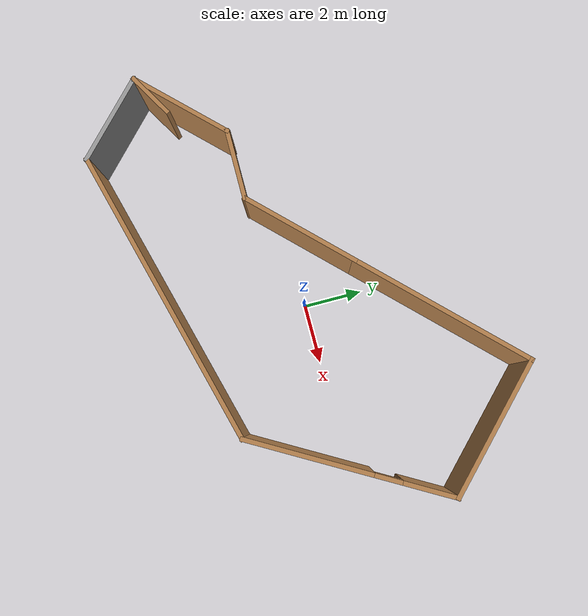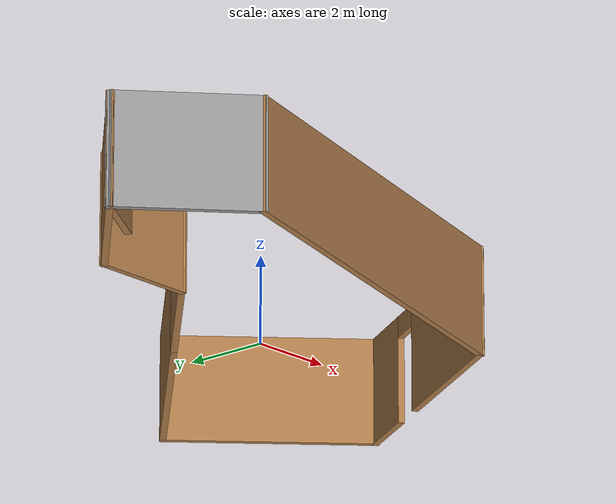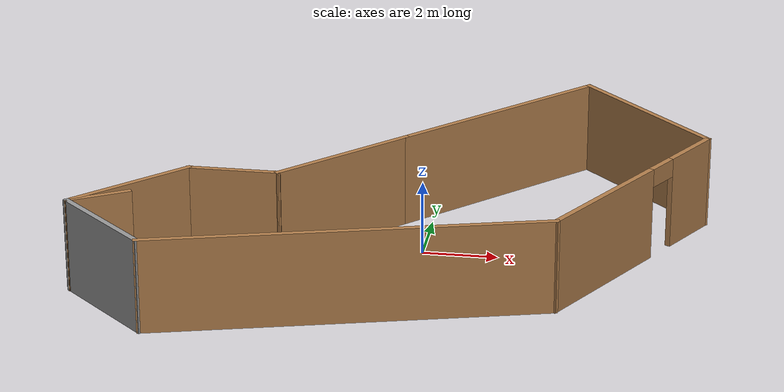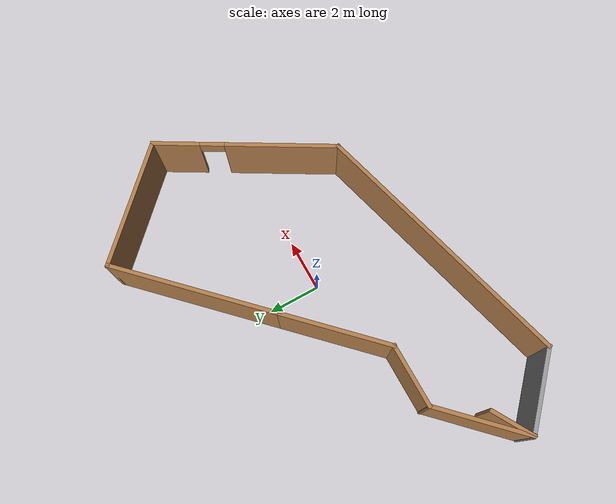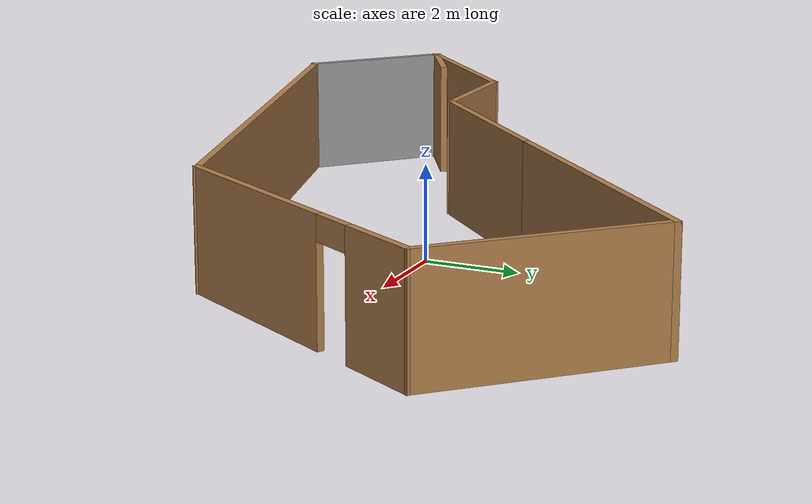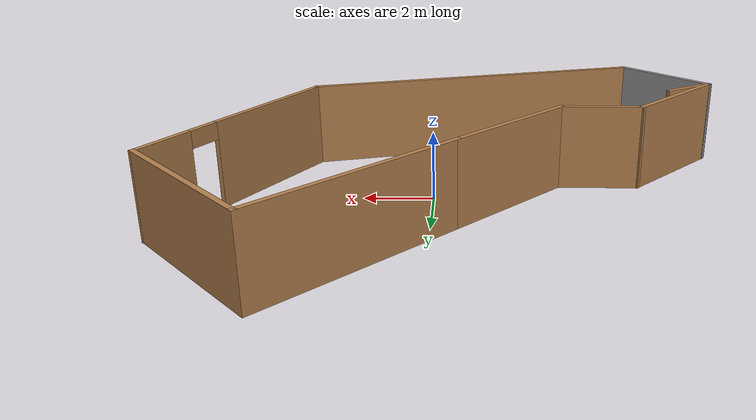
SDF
<?xml version='1.0'?>
<sdf version='1.7'>
  <model name='map.world'>
    <pose>-0.658481 0.344638 0 0 -0 0</pose>
    <link name='Wall_0'>
      <collision name='Wall_0_Collision'>
        <geometry>
          <box>
            <size>1.75 0.15 2.5</size>
          </box>
        </geometry>
        <pose>0 0 1.25 0 -0 0</pose>
      </collision>
      <visual name='Wall_0_Visual'>
        <pose>0 0 1.25 0 -0 0</pose>
        <geometry>
          <box>
            <size>1.75 0.15 2.5</size>
          </box>
        </geometry>
        <material>
          <script>
            <uri>file://media/materials/scripts/gazebo.material</uri>
            <name>Gazebo/Wood</name>
          </script>
          <ambient>1 1 1 1</ambient>
        </material>
        <meta>
          <layer>0</layer>
        </meta>
      </visual>
      <pose>-7.16434 -3.51464 0 0 -0 -2.61799</pose>
    </link>
    <link name='Wall_1'>
      <collision name='Wall_1_Collision'>
        <geometry>
          <box>
            <size>3.75 0.15 2.5</size>
          </box>
        </geometry>
        <pose>0 0 1.25 0 -0 0</pose>
      </collision>
      <visual name='Wall_1_Visual'>
        <pose>0 0 1.25 0 -0 0</pose>
        <geometry>
          <box>
            <size>3.75 0.15 2.5</size>
          </box>
        </geometry>
        <material>
          <script>
            <uri>file://media/materials/scripts/gazebo.material</uri>
            <name>Gazebo/Wood</name>
          </script>
          <ambient>1 1 1 1</ambient>
        </material>
        <meta>
          <layer>0</layer>
        </meta>
      </visual>
      <pose>-6.58437 -2.64185 0 0 -0 0.785398</pose>
    </link>
    <link name='Wall_2'>
      <collision name='Wall_2_Collision'>
        <geometry>
          <box>
            <size>2.5 0.15 2.5</size>
          </box>
        </geometry>
        <pose>0 0 1.25 0 -0 0</pose>
      </collision>
      <visual name='Wall_2_Visual'>
        <pose>0 0 1.25 0 -0 0</pose>
        <geometry>
          <box>
            <size>2.5 0.15 2.5</size>
          </box>
        </geometry>
        <material>
          <script>
            <uri>file://media/materials/scripts/gazebo.material</uri>
            <name>Gazebo/Wood</name>
          </script>
          <ambient>1 1 1 1</ambient>
        </material>
        <meta>
          <layer>0</layer>
        </meta>
      </visual>
      <pose>-4.13657 -1.36905 0 0 -0 0</pose>
    </link>
    <link name='Wall_3'>
      <collision name='Wall_3_Collision'>
        <geometry>
          <box>
            <size>4.25 0.15 2.5</size>
          </box>
        </geometry>
        <pose>0 0 1.25 0 -0 0</pose>
      </collision>
      <visual name='Wall_3_Visual'>
        <pose>0 0 1.25 0 -0 0</pose>
        <geometry>
          <box>
            <size>4.25 0.15 2.5</size>
          </box>
        </geometry>
        <material>
          <script>
            <uri>file://media/materials/scripts/gazebo.material</uri>
            <name>Gazebo/Wood</name>
          </script>
          <ambient>1 1 1 1</ambient>
        </material>
        <meta>
          <layer>0</layer>
        </meta>
      </visual>
      <pose>-1.51201 0.080515 0 0 -0 0.785398</pose>
    </link>
    <link name='Wall_4'>
      <collision name='Wall_4_Collision'>
        <geometry>
          <box>
            <size>6.5 0.15 2.5</size>
          </box>
        </geometry>
        <pose>0 0 1.25 0 -0 0</pose>
      </collision>
      <visual name='Wall_4_Visual'>
        <pose>0 0 1.25 0 -0 0</pose>
        <geometry>
          <box>
            <size>6.5 0.15 2.5</size>
          </box>
        </geometry>
        <material>
          <script>
            <uri>file://media/materials/scripts/gazebo.material</uri>
            <name>Gazebo/Wood</name>
          </script>
          <ambient>1 1 1 1</ambient>
        </material>
        <meta>
          <layer>0</layer>
        </meta>
      </visual>
      <pose>2.18263 3.77515 0 0 -0 0.785398</pose>
    </link>
    <link name='Wall_5'>
      <collision name='Wall_5_Collision'>
        <geometry>
          <box>
            <size>5 0.15 2.5</size>
          </box>
        </geometry>
        <pose>0 0 1.25 0 -0 0</pose>
      </collision>
      <visual name='Wall_5_Visual'>
        <pose>0 0 1.25 0 -0 0</pose>
        <geometry>
          <box>
            <size>5 0.15 2.5</size>
          </box>
        </geometry>
        <material>
          <script>
            <uri>file://media/materials/scripts/gazebo.material</uri>
            <name>Gazebo/Wood</name>
          </script>
          <ambient>1 1 1 1</ambient>
        </material>
        <meta>
          <layer>0</layer>
        </meta>
      </visual>
      <pose>6.14243 4.30548 0 0 -0 -0.785398</pose>
    </link>
    <link name='Wall_6'>
      <pose>6.14466 -0.375393 0 0 -0 -2.0944</pose>
      <visual name='Wall_6_Visual_0'>
        <pose>-2.58811 0 1.25 0 -0 0</pose>
        <geometry>
          <box>
            <size>1.82377 0.15 2.5</size>
          </box>
        </geometry>
        <material>
          <script>
            <uri>file://media/materials/scripts/gazebo.material</uri>
            <name>Gazebo/Wood</name>
          </script>
          <ambient>1 1 1 1</ambient>
        </material>
        <meta>
          <layer>0</layer>
        </meta>
      </visual>
      <collision name='Wall_6_Collision_0'>
        <geometry>
          <box>
            <size>1.82377 0.15 2.5</size>
          </box>
        </geometry>
        <pose>-2.58811 0 1.25 0 -0 0</pose>
      </collision>
      <visual name='Wall_6_Visual_1'>
        <pose>1.36189 0 1.25 0 -0 0</pose>
        <geometry>
          <box>
            <size>4.27623 0.15 2.5</size>
          </box>
        </geometry>
        <material>
          <script>
            <uri>file://media/materials/scripts/gazebo.material</uri>
            <name>Gazebo/Wood</name>
          </script>
          <ambient>1 1 1 1</ambient>
        </material>
        <meta>
          <layer>0</layer>
        </meta>
      </visual>
      <collision name='Wall_6_Collision_1'>
        <geometry>
          <box>
            <size>4.27623 0.15 2.5</size>
          </box>
        </geometry>
        <pose>1.36189 0 1.25 0 -0 0</pose>
      </collision>
      <visual name='Wall_6_Visual_2'>
        <pose>-1.22623 0 2.25 0 -0 0</pose>
        <geometry>
          <box>
            <size>0.9 0.15 0.5</size>
          </box>
        </geometry>
        <material>
          <script>
            <uri>file://media/materials/scripts/gazebo.material</uri>
            <name>Gazebo/Wood</name>
          </script>
          <ambient>1 1 1 1</ambient>
        </material>
        <meta>
          <layer>0</layer>
        </meta>
      </visual>
      <collision name='Wall_6_Collision_2'>
        <geometry>
          <box>
            <size>0.9 0.15 0.5</size>
          </box>
        </geometry>
        <pose>-1.22623 0 2.25 0 -0 0</pose>
      </collision>
    </link>
    <link name='Wall_7'>
      <collision name='Wall_7_Collision'>
        <geometry>
          <box>
            <size>10.5 0.15 2.5</size>
          </box>
        </geometry>
        <pose>0 0 1.25 0 -0 0</pose>
      </collision>
      <visual name='Wall_7_Visual'>
        <pose>0 0 1.25 0 -0 0</pose>
        <geometry>
          <box>
            <size>10.5 0.15 2.5</size>
          </box>
        </geometry>
        <material>
          <script>
            <uri>file://media/materials/scripts/gazebo.material</uri>
            <name>Gazebo/Wood</name>
          </script>
          <ambient>1 1 1 1</ambient>
        </material>
        <meta>
          <layer>0</layer>
        </meta>
      </visual>
      <pose>-0.566507 -4.68092 0 0 -0 -2.87979</pose>
    </link>
    <link name='Wall_8'>
      <collision name='Wall_8_Collision'>
        <geometry>
          <box>
            <size>3.2624 0.15 2.5</size>
          </box>
        </geometry>
        <pose>0 0 1.25 0 -0 0</pose>
      </collision>
      <visual name='Wall_8_Visual'>
        <pose>0 0 1.25 0 -0 0</pose>
        <geometry>
          <box>
            <size>3.2624 0.15 2.5</size>
          </box>
        </geometry>
        <material>
          <script>
            <uri>file://media/materials/scripts/gazebo.material</uri>
            <name>Gazebo/Grey</name>
          </script>
          <ambient>1 1 1 1</ambient>
        </material>
        <meta>
          <layer>0</layer>
        </meta>
      </visual>
      <pose>-6.71117 -4.96747 0 0 -0 2.39854</pose>
    </link>
    <link name='Wall_9'>
      <collision name='Wall_9_Collision'>
        <geometry>
          <box>
            <size>0.15 0.15 2.5</size>
          </box>
        </geometry>
        <pose>0 0 1.25 0 -0 0</pose>
      </collision>
      <visual name='Wall_9_Visual'>
        <pose>0 0 1.25 0 -0 0</pose>
        <geometry>
          <box>
            <size>0.15 0.15 2.5</size>
          </box>
        </geometry>
        <material>
          <script>
            <uri>file://media/materials/scripts/gazebo.material</uri>
            <name>Gazebo/Grey</name>
          </script>
          <ambient>1 1 1 1</ambient>
        </material>
        <meta>
          <layer>0</layer>
        </meta>
      </visual>
      <pose>-7.85716 -3.91464 0 0 -0 0</pose>
    </link>
    <static>1</static>
  </model>
</sdf>
